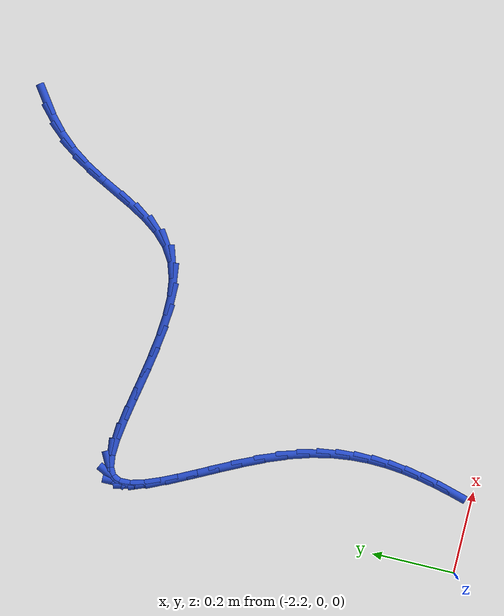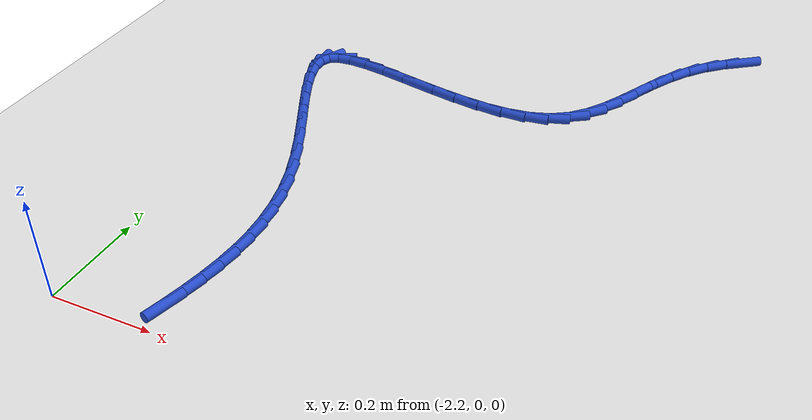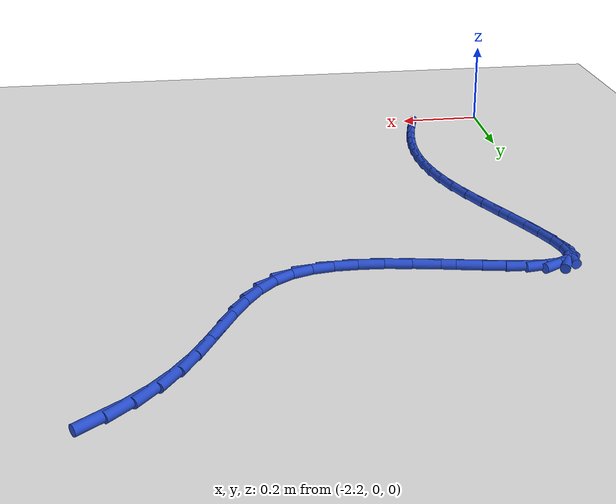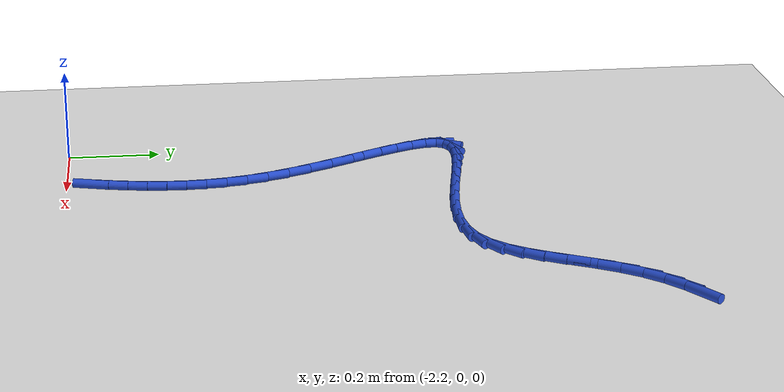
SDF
<sdf version="1.6">
 <world name="default">
  <model name="ground_plane">
   <static>1</static>
   <link name="link">
    <collision name="collision">
     <geometry><plane><normal>0 0 1</normal><size>100 100</size></plane></geometry>
     <surface><friction><ode><mu>100</mu><mu2>50</mu2></ode></friction></surface>
    </collision>
    <visual name="visual">
     <cast_shadows>0</cast_shadows>
     <geometry><plane><normal>0 0 1</normal><size>100 100</size></plane></geometry>
     <material>
      <script><uri>file://media/materials/scripts/gazebo.material</uri><name>Gazebo/WhiteGlow</name></script>
     </material>
    </visual>
   </link>
  </model>
  <model name="line">
   <link name="link_45">
    <pose>-1.3291472984205273 1.2152972168335543 0.01 0 1.57 0.6210163978946417</pose>
    <collision name="collision">
     <geometry><cylinder><radius>0.01</radius><length>0.08</length></cylinder></geometry>
    </collision>
    <visual name="visual">
     <material>
      <script><name>Gazebo/Blue</name><uri>file://media/materials/scripts/gazebo.material</uri></script>
     </material>
     <geometry><cylinder><radius>0.01</radius><length>0.08</length></cylinder></geometry>
    </visual>
   </link>
   <link name="link_46">
    <pose>-1.367073163065494 1.1881633639418878 0.01 0 1.57 0.7355918722484676</pose>
    <collision name="collision">
     <geometry><cylinder><radius>0.01</radius><length>0.08</length></cylinder></geometry>
    </collision>
    <visual name="visual">
     <material>
      <script><name>Gazebo/Blue</name><uri>file://media/materials/scripts/gazebo.material</uri></script>
     </material>
     <geometry><cylinder><radius>0.01</radius><length>0.08</length></cylinder></geometry>
    </visual>
   </link>
   <link name="link_47">
    <pose>-1.4019679587484346 1.156582228329358 0.01 0 1.57 0.8535623254408317</pose>
    <collision name="collision">
     <geometry><cylinder><radius>0.01</radius><length>0.08</length></cylinder></geometry>
    </collision>
    <visual name="visual">
     <material>
      <script><name>Gazebo/Blue</name><uri>file://media/materials/scripts/gazebo.material</uri></script>
     </material>
     <geometry><cylinder><radius>0.01</radius><length>0.08</length></cylinder></geometry>
    </visual>
   </link>
   <link name="link_48">
    <pose>-1.4330582679869406 1.1209358071638464 0.01 0 1.57 0.9724983486565782</pose>
    <collision name="collision">
     <geometry><cylinder><radius>0.01</radius><length>0.08</length></cylinder></geometry>
    </collision>
    <visual name="visual">
     <material>
      <script><name>Gazebo/Blue</name><uri>file://media/materials/scripts/gazebo.material</uri></script>
     </material>
     <geometry><cylinder><radius>0.01</radius><length>0.08</length></cylinder></geometry>
    </visual>
   </link>
   <link name="link_49">
    <pose>-1.4597882550750798 1.0817216396972555 0.01 0 1.57 1.0597664233551962</pose>
    <collision name="collision">
     <geometry><cylinder><radius>0.01</radius><length>0.08</length></cylinder></geometry>
    </collision>
    <visual name="visual">
     <material>
      <script><name>Gazebo/Blue</name><uri>file://media/materials/scripts/gazebo.material</uri></script>
     </material>
     <geometry><cylinder><radius>0.01</radius><length>0.08</length></cylinder></geometry>
    </visual>
   </link>
   <link name="link_50">
    <pose>-1.4830626939414202 1.0402128902538126 0.01 0 1.57 1.1030015402741207</pose>
    <collision name="collision">
     <geometry><cylinder><radius>0.01</radius><length>0.08</length></cylinder></geometry>
    </collision>
    <visual name="visual">
     <material>
      <script><name>Gazebo/Blue</name><uri>file://media/materials/scripts/gazebo.material</uri></script>
     </material>
     <geometry><cylinder><radius>0.01</radius><length>0.08</length></cylinder></geometry>
    </visual>
   </link>
   <link name="link_51">
    <pose>-1.5043874544323719 0.99800192210984 0.01 0 1.57 1.1028425541408635</pose>
    <collision name="collision">
     <geometry><cylinder><radius>0.01</radius><length>0.08</length></cylinder></geometry>
    </collision>
    <visual name="visual">
     <material>
      <script><name>Gazebo/Blue</name><uri>file://media/materials/scripts/gazebo.material</uri></script>
     </material>
     <geometry><cylinder><radius>0.01</radius><length>0.08</length></cylinder></geometry>
    </visual>
   </link>
   <link name="link_52">
    <pose>-1.5252702661744886 0.9566820861375726 0.01 0 1.57 1.0563806151073565</pose>
    <collision name="collision">
     <geometry><cylinder><radius>0.01</radius><length>0.08</length></cylinder></geometry>
    </collision>
    <visual name="visual">
     <material>
      <script><name>Gazebo/Blue</name><uri>file://media/materials/scripts/gazebo.material</uri></script>
     </material>
     <geometry><cylinder><radius>0.01</radius><length>0.08</length></cylinder></geometry>
    </visual>
   </link>
   <link name="link_53">
    <pose>-1.5472188587943236 0.9178467332092475 0.01 0 1.57 0.9563756803726114</pose>
    <collision name="collision">
     <geometry><cylinder><radius>0.01</radius><length>0.08</length></cylinder></geometry>
    </collision>
    <visual name="visual">
     <material>
      <script><name>Gazebo/Blue</name><uri>file://media/materials/scripts/gazebo.material</uri></script>
     </material>
     <geometry><cylinder><radius>0.01</radius><length>0.08</length></cylinder></geometry>
    </visual>
   </link>
   <link name="link_54">
    <pose>-1.571740961918429 0.8830892141970994 0.01 0 1.57 0.7937701929431378</pose>
    <collision name="collision">
     <geometry><cylinder><radius>0.01</radius><length>0.08</length></cylinder></geometry>
    </collision>
    <visual name="visual">
     <material>
      <script><name>Gazebo/Blue</name><uri>file://media/materials/scripts/gazebo.material</uri></script>
     </material>
     <geometry><cylinder><radius>0.01</radius><length>0.08</length></cylinder></geometry>
    </visual>
   </link>
   <link name="link_55">
    <pose>-1.6003443051733588 0.8540028799733638 0.01 0 1.57 0.5680406840270082</pose>
    <collision name="collision">
     <geometry><cylinder><radius>0.01</radius><length>0.08</length></cylinder></geometry>
    </collision>
    <visual name="visual">
     <material>
      <script><name>Gazebo/Blue</name><uri>file://media/materials/scripts/gazebo.material</uri></script>
     </material>
     <geometry><cylinder><radius>0.01</radius><length>0.08</length></cylinder></geometry>
    </visual>
   </link>
   <link name="link_56">
    <pose>-1.6345366181856658 0.8321810814102775 0.01 0 1.57 0.31708209583452684</pose>
    <collision name="collision">
     <geometry><cylinder><radius>0.01</radius><length>0.08</length></cylinder></geometry>
    </collision>
    <visual name="visual">
     <material>
      <script><name>Gazebo/Blue</name><uri>file://media/materials/scripts/gazebo.material</uri></script>
     </material>
     <geometry><cylinder><radius>0.01</radius><length>0.08</length></cylinder></geometry>
    </visual>
   </link>
   <link name="link_57">
    <pose>-1.6753869330593354 0.8187758798676216 0.01 0 1.57 0.1252555673458638</pose>
    <collision name="collision">
     <geometry><cylinder><radius>0.01</radius><length>0.08</length></cylinder></geometry>
    </collision>
    <visual name="visual">
     <material>
      <script><name>Gazebo/Blue</name><uri>file://media/materials/scripts/gazebo.material</uri></script>
     </material>
     <geometry><cylinder><radius>0.01</radius><length>0.08</length></cylinder></geometry>
    </visual>
   </link>
   <link name="link_58">
    <pose>-1.7219497785698106 0.8129129309336403 0.01 0 1.57 -0.004406884729331305</pose>
    <collision name="collision">
     <geometry><cylinder><radius>0.01</radius><length>0.08</length></cylinder></geometry>
    </collision>
    <visual name="visual">
     <material>
      <script><name>Gazebo/Blue</name><uri>file://media/materials/scripts/gazebo.material</uri></script>
     </material>
     <geometry><cylinder><radius>0.01</radius><length>0.08</length></cylinder></geometry>
    </visual>
   </link>
   <link name="link_59">
    <pose>-1.7727017983411066 0.8131365906824263 0.01 0 1.57 -0.09063041390418657</pose>
    <collision name="collision">
     <geometry><cylinder><radius>0.01</radius><length>0.08</length></cylinder></geometry>
    </collision>
    <visual name="visual">
     <material>
      <script><name>Gazebo/Blue</name><uri>file://media/materials/scripts/gazebo.material</uri></script>
     </material>
     <geometry><cylinder><radius>0.01</radius><length>0.08</length></cylinder></geometry>
    </visual>
   </link>
   <link name="link_60">
    <pose>-1.8261195869790288 0.8179911658802441 0.01 0 1.57 -0.14612430506655147</pose>
    <collision name="collision">
     <geometry><cylinder><radius>0.01</radius><length>0.08</length></cylinder></geometry>
    </collision>
    <visual name="visual">
     <material>
      <script><name>Gazebo/Blue</name><uri>file://media/materials/scripts/gazebo.material</uri></script>
     </material>
     <geometry><cylinder><radius>0.01</radius><length>0.08</length></cylinder></geometry>
    </visual>
   </link>
   <link name="link_61">
    <pose>-1.8806797390893828 0.8260209632933585 0.01 0 1.57 -0.1780408511313158</pose>
    <collision name="collision">
     <geometry><cylinder><radius>0.01</radius><length>0.08</length></cylinder></geometry>
    </collision>
    <visual name="visual">
     <material>
      <script><name>Gazebo/Blue</name><uri>file://media/materials/scripts/gazebo.material</uri></script>
     </material>
     <geometry><cylinder><radius>0.01</radius><length>0.08</length></cylinder></geometry>
    </visual>
   </link>
   <link name="link_62">
    <pose>-1.9348588492779732 0.8357702896880335 0.01 0 1.57 -0.1892566009196271</pose>
    <collision name="collision">
     <geometry><cylinder><radius>0.01</radius><length>0.08</length></cylinder></geometry>
    </collision>
    <visual name="visual">
     <material>
      <script><name>Gazebo/Blue</name><uri>file://media/materials/scripts/gazebo.material</uri></script>
     </material>
     <geometry><cylinder><radius>0.01</radius><length>0.08</length></cylinder></geometry>
    </visual>
   </link>
   <link name="link_63">
    <pose>-1.9871335121506055 0.8457834518305339 0.01 0 1.57 -0.17866553716962968</pose>
    <collision name="collision">
     <geometry><cylinder><radius>0.01</radius><length>0.08</length></cylinder></geometry>
    </collision>
    <visual name="visual">
     <material>
      <script><name>Gazebo/Blue</name><uri>file://media/materials/scripts/gazebo.material</uri></script>
     </material>
     <geometry><cylinder><radius>0.01</radius><length>0.08</length></cylinder></geometry>
    </visual>
   </link>
   <link name="link_64">
    <pose>-2.0359803223130837 0.8546047564871238 0.01 0 1.57 -0.1397299165177419</pose>
    <collision name="collision">
     <geometry><cylinder><radius>0.01</radius><length>0.08</length></cylinder></geometry>
    </collision>
    <visual name="visual">
     <material>
      <script><name>Gazebo/Blue</name><uri>file://media/materials/scripts/gazebo.material</uri></script>
     </material>
     <geometry><cylinder><radius>0.01</radius><length>0.08</length></cylinder></geometry>
    </visual>
   </link>
   <link name="link_65">
    <pose>-2.079875874371214 0.8607785104240677 0.01 0 1.57 -0.055273966449175906</pose>
    <collision name="collision">
     <geometry><cylinder><radius>0.01</radius><length>0.08</length></cylinder></geometry>
    </collision>
    <visual name="visual">
     <material>
      <script><name>Gazebo/Blue</name><uri>file://media/materials/scripts/gazebo.material</uri></script>
     </material>
     <geometry><cylinder><radius>0.01</radius><length>0.08</length></cylinder></geometry>
    </visual>
   </link>
   <link name="link_66">
    <pose>-2.1172967629308026 0.8628490204076306 0.01 0 1.57 0.11801106076208959</pose>
    <collision name="collision">
     <geometry><cylinder><radius>0.01</radius><length>0.08</length></cylinder></geometry>
    </collision>
    <visual name="visual">
     <material>
      <script><name>Gazebo/Blue</name><uri>file://media/materials/scripts/gazebo.material</uri></script>
     </material>
     <geometry><cylinder><radius>0.01</radius><length>0.08</length></cylinder></geometry>
    </visual>
   </link>
   <link name="link_67">
    <pose>-2.1467195825976524 0.8593605932040761 0.01 0 1.57 0.48560518540509556</pose>
    <collision name="collision">
     <geometry><cylinder><radius>0.01</radius><length>0.08</length></cylinder></geometry>
    </collision>
    <visual name="visual">
     <material>
      <script><name>Gazebo/Blue</name><uri>file://media/materials/scripts/gazebo.material</uri></script>
     </material>
     <geometry><cylinder><radius>0.01</radius><length>0.08</length></cylinder></geometry>
    </visual>
   </link>
   <link name="link_68">
    <pose>-2.1666209279775708 0.8488575355796691 0.01 0 1.57 1.1172285961468695</pose>
    <collision name="collision">
     <geometry><cylinder><radius>0.01</radius><length>0.08</length></cylinder></geometry>
    </collision>
    <visual name="visual">
     <material>
      <script><name>Gazebo/Blue</name><uri>file://media/materials/scripts/gazebo.material</uri></script>
     </material>
     <geometry><cylinder><radius>0.01</radius><length>0.08</length></cylinder></geometry>
    </visual>
   </link>
   <link name="link_69">
    <pose>-2.175760031778402 0.830109229717225 0.01 0 1.57 -1.5399905865385248</pose>
    <collision name="collision">
     <geometry><cylinder><radius>0.01</radius><length>0.08</length></cylinder></geometry>
    </collision>
    <visual name="visual">
     <material>
      <script><name>Gazebo/Blue</name><uri>file://media/materials/scripts/gazebo.material</uri></script>
     </material>
     <geometry><cylinder><radius>0.01</radius><length>0.08</length></cylinder></geometry>
    </visual>
   </link>
   <link name="link_70">
    <pose>-2.1749404570514757 0.803513035415826 0.01 0 1.57 -1.3049530049283278</pose>
    <collision name="collision">
     <geometry><cylinder><radius>0.01</radius><length>0.08</length></cylinder></geometry>
    </collision>
    <visual name="visual">
     <material>
      <script><name>Gazebo/Blue</name><uri>file://media/materials/scripts/gazebo.material</uri></script>
     </material>
     <geometry><cylinder><radius>0.01</radius><length>0.08</length></cylinder></geometry>
    </visual>
   </link>
   <link name="link_71">
    <pose>-2.1658648980468342 0.7701823246739803 0.01 0 1.57 -1.1892842040003102</pose>
    <collision name="collision">
     <geometry><cylinder><radius>0.01</radius><length>0.08</length></cylinder></geometry>
    </collision>
    <visual name="visual">
     <material>
      <script><name>Gazebo/Blue</name><uri>file://media/materials/scripts/gazebo.material</uri></script>
     </material>
     <geometry><cylinder><radius>0.01</radius><length>0.08</length></cylinder></geometry>
    </visual>
   </link>
   <link name="link_72">
    <pose>-2.1502399354960393 0.7312335644425086 0.01 0 1.57 -1.1305663218115263</pose>
    <collision name="collision">
     <geometry><cylinder><radius>0.01</radius><length>0.08</length></cylinder></geometry>
    </collision>
    <visual name="visual">
     <material>
      <script><name>Gazebo/Blue</name><uri>file://media/materials/scripts/gazebo.material</uri></script>
     </material>
     <geometry><cylinder><radius>0.01</radius><length>0.08</length></cylinder></geometry>
    </visual>
   </link>
   <link name="link_73">
    <pose>-2.129772150130653 0.6877832216722303 0.01 0 1.57 -1.1039716087572669</pose>
    <collision name="collision">
     <geometry><cylinder><radius>0.01</radius><length>0.08</length></cylinder></geometry>
    </collision>
    <visual name="visual">
     <material>
      <script><name>Gazebo/Blue</name><uri>file://media/materials/scripts/gazebo.material</uri></script>
     </material>
     <geometry><cylinder><radius>0.01</radius><length>0.08</length></cylinder></geometry>
    </visual>
   </link>
   <link name="link_74">
    <pose>-2.106168122682237 0.640947763313965 0.01 0 1.57 -1.099332780459465</pose>
    <collision name="collision">
     <geometry><cylinder><radius>0.01</radius><length>0.08</length></cylinder></geometry>
    </collision>
    <visual name="visual">
     <material>
      <script><name>Gazebo/Blue</name><uri>file://media/materials/scripts/gazebo.material</uri></script>
     </material>
     <geometry><cylinder><radius>0.01</radius><length>0.08</length></cylinder></geometry>
    </visual>
   </link>
   <link name="link_75">
    <pose>-2.0811344338823554 0.5918436563185336 0.01 0 1.57 -1.1130778709149476</pose>
    <collision name="collision">
     <geometry><cylinder><radius>0.01</radius><length>0.08</length></cylinder></geometry>
    </collision>
    <visual name="visual">
     <material>
      <script><name>Gazebo/Blue</name><uri>file://media/materials/scripts/gazebo.material</uri></script>
     </material>
     <geometry><cylinder><radius>0.01</radius><length>0.08</length></cylinder></geometry>
    </visual>
   </link>
   <link name="link_76">
    <pose>-2.056377664462568 0.5415873676367554 0.01 0 1.57 -1.1455990314817999</pose>
    <collision name="collision">
     <geometry><cylinder><radius>0.01</radius><length>0.08</length></cylinder></geometry>
    </collision>
    <visual name="visual">
     <material>
      <script><name>Gazebo/Blue</name><uri>file://media/materials/scripts/gazebo.material</uri></script>
     </material>
     <geometry><cylinder><radius>0.01</radius><length>0.08</length></cylinder></geometry>
    </visual>
   </link>
   <link name="link_77">
    <pose>-2.033604395154438 0.4912953642194497 0.01 0 1.57 -1.2007852691958396</pose>
    <collision name="collision">
     <geometry><cylinder><radius>0.01</radius><length>0.08</length></cylinder></geometry>
    </collision>
    <visual name="visual">
     <material>
      <script><name>Gazebo/Blue</name><uri>file://media/materials/scripts/gazebo.material</uri></script>
     </material>
     <geometry><cylinder><radius>0.01</radius><length>0.08</length></cylinder></geometry>
    </visual>
   </link>
   <link name="link_78">
    <pose>-2.0145149988058737 0.4420801456520575 0.01 0 1.57 -1.276530668402631</pose>
    <collision name="collision">
     <geometry><cylinder><radius>0.01</radius><length>0.08</length></cylinder></geometry>
    </collision>
    <visual name="visual">
     <material>
      <script><name>Gazebo/Blue</name><uri>file://media/materials/scripts/gazebo.material</uri></script>
     </material>
     <geometry><cylinder><radius>0.01</radius><length>0.08</length></cylinder></geometry>
    </visual>
   </link>
   <link name="link_79">
    <pose>-2.00013179042895 0.39462087492201875 0.01 0 1.57 -1.3573937975804207</pose>
    <collision name="collision">
     <geometry><cylinder><radius>0.01</radius><length>0.08</length></cylinder></geometry>
    </collision>
    <visual name="visual">
     <material>
      <script><name>Gazebo/Blue</name><uri>file://media/materials/scripts/gazebo.material</uri></script>
     </material>
     <geometry><cylinder><radius>0.01</radius><length>0.08</length></cylinder></geometry>
    </visual>
   </link>
   <link name="link_80">
    <pose>-1.9901977870320173 0.3487791348407695 0.01 0 1.57 -1.4392053865078431</pose>
    <collision name="collision">
     <geometry><cylinder><radius>0.01</radius><length>0.08</length></cylinder></geometry>
    </collision>
    <visual name="visual">
     <material>
      <script><name>Gazebo/Blue</name><uri>file://media/materials/scripts/gazebo.material</uri></script>
     </material>
     <geometry><cylinder><radius>0.01</radius><length>0.08</length></cylinder></geometry>
    </visual>
   </link>
   <link name="link_81">
    <pose>-1.984314136341671 0.30432584168856236 0.01 0 1.57 -1.519283896503375</pose>
    <collision name="collision">
     <geometry><cylinder><radius>0.01</radius><length>0.08</length></cylinder></geometry>
    </collision>
    <visual name="visual">
     <material>
      <script><name>Gazebo/Blue</name><uri>file://media/materials/scripts/gazebo.material</uri></script>
     </material>
     <geometry><cylinder><radius>0.01</radius><length>0.08</length></cylinder></geometry>
    </visual>
   </link>
   <link name="link_82">
    <pose>-1.9820819860845071 0.2610319117456503 0.01 0 1.57 1.546711986353489</pose>
    <collision name="collision">
     <geometry><cylinder><radius>0.01</radius><length>0.08</length></cylinder></geometry>
    </collision>
    <visual name="visual">
     <material>
      <script><name>Gazebo/Blue</name><uri>file://media/materials/scripts/gazebo.material</uri></script>
     </material>
     <geometry><cylinder><radius>0.01</radius><length>0.08</length></cylinder></geometry>
    </visual>
   </link>
   <link name="link_83">
    <pose>-1.9831024839871223 0.2186682612922875 0.01 0 1.57 1.4780705469140105</pose>
    <collision name="collision">
     <geometry><cylinder><radius>0.01</radius><length>0.08</length></cylinder></geometry>
    </collision>
    <visual name="visual">
     <material>
      <script><name>Gazebo/Blue</name><uri>file://media/materials/scripts/gazebo.material</uri></script>
     </material>
     <geometry><cylinder><radius>0.01</radius><length>0.08</length></cylinder></geometry>
    </visual>
   </link>
   <link name="link_84">
    <pose>-1.9869767777761118 0.17700580660872647 0.01 0 1.57 1.4183305287716659</pose>
    <collision name="collision">
     <geometry><cylinder><radius>0.01</radius><length>0.08</length></cylinder></geometry>
    </collision>
    <visual name="visual">
     <material>
      <script><name>Gazebo/Blue</name><uri>file://media/materials/scripts/gazebo.material</uri></script>
     </material>
     <geometry><cylinder><radius>0.01</radius><length>0.08</length></cylinder></geometry>
    </visual>
   </link>
   <link name="link_85">
    <pose>-1.9933060151780726 0.13581546397522112 0.01 0 1.57 1.3688056384747098</pose>
    <collision name="collision">
     <geometry><cylinder><radius>0.01</radius><length>0.08</length></cylinder></geometry>
    </collision>
    <visual name="visual">
     <material>
      <script><name>Gazebo/Blue</name><uri>file://media/materials/scripts/gazebo.material</uri></script>
     </material>
     <geometry><cylinder><radius>0.01</radius><length>0.08</length></cylinder></geometry>
    </visual>
   </link>
   <link name="link_86">
    <pose>-2.0016913439196005 0.09486814967202445 0.01 0 1.57 1.3302089107468724</pose>
    <collision name="collision">
     <geometry><cylinder><radius>0.01</radius><length>0.08</length></cylinder></geometry>
    </collision>
    <visual name="visual">
     <material>
      <script><name>Gazebo/Blue</name><uri>file://media/materials/scripts/gazebo.material</uri></script>
     </material>
     <geometry><cylinder><radius>0.01</radius><length>0.08</length></cylinder></geometry>
    </visual>
   </link>
   <link name="link_87">
    <pose>-2.0117339117272914 0.05393477997938975 0.01 0 1.57 1.3027664596216624</pose>
    <collision name="collision">
     <geometry><cylinder><radius>0.01</radius><length>0.08</length></cylinder></geometry>
    </collision>
    <visual name="visual">
     <material>
      <script><name>Gazebo/Blue</name><uri>file://media/materials/scripts/gazebo.material</uri></script>
     </material>
     <geometry><cylinder><radius>0.01</radius><length>0.08</length></cylinder></geometry>
    </visual>
   </link>
  </model>
 </world>
</sdf>
